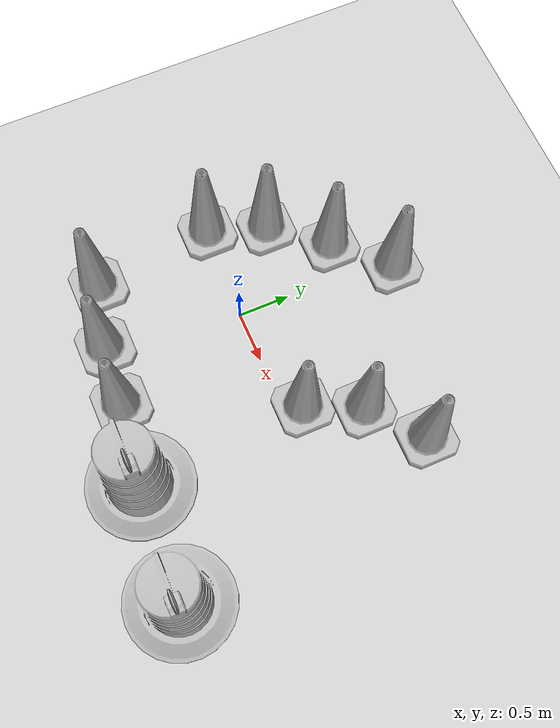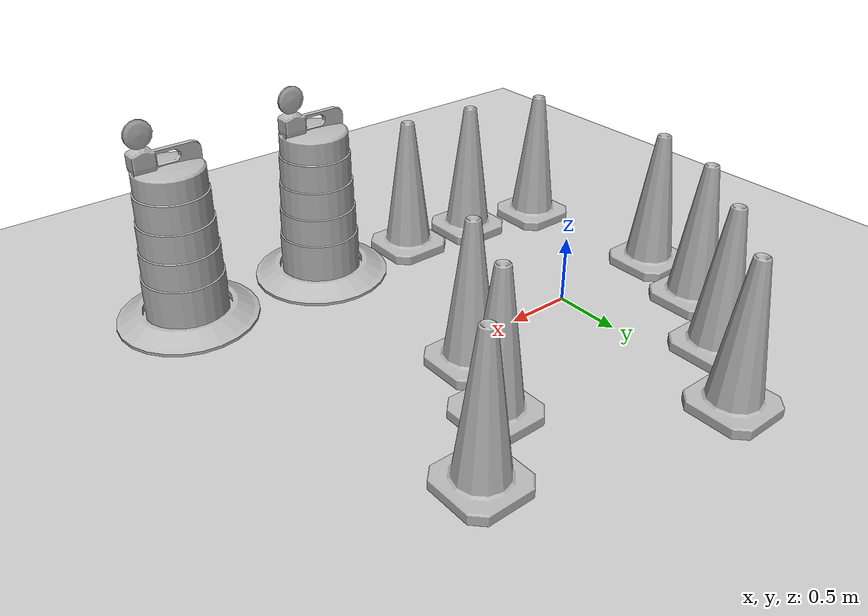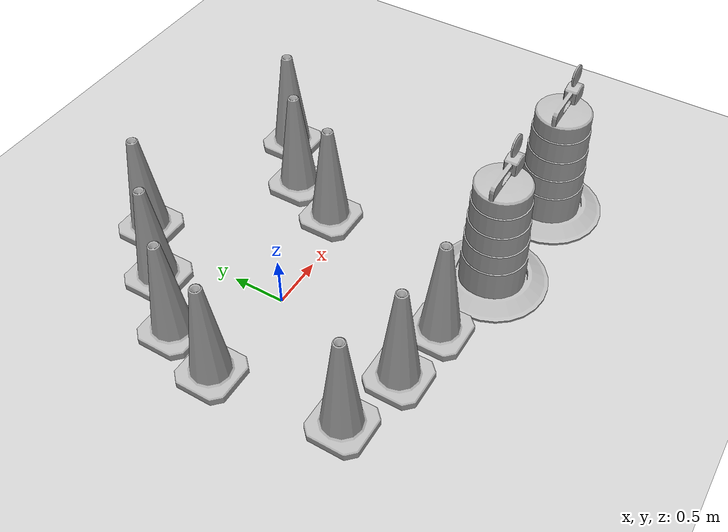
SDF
<sdf version="1.7">
 <world name="default">
  <light name="sun" type="directional">
   <pose>0 0 10 0 -0 0</pose>
   <diffuse>0.8 0.8 0.8 1</diffuse>
   <specular>0.2 0.2 0.2 1</specular>
   <attenuation>
    <range>1000</range>
    <constant>0.9</constant>
    <linear>0.01</linear>
    <quadratic>0.001</quadratic>
   </attenuation>
   <direction>-0.5 0.1 -0.9</direction>
   <spot><inner_angle>0</inner_angle><outer_angle>0</outer_angle><falloff>0</falloff></spot>
  </light>
  <model name="ground_plane">
   <static>1</static>
   <link name="link">
    <collision name="collision">
     <geometry><plane><normal>0 0 1</normal><size>100 100</size></plane></geometry>
     <surface>
      <contact><collide_bitmask>65535</collide_bitmask></contact>
      <friction><ode><mu>100</mu><mu2>50</mu2></ode></friction>
     </surface>
    </collision>
    <visual name="visual">
     <cast_shadows>0</cast_shadows>
     <geometry><plane><normal>0 0 1</normal><size>100 100</size></plane></geometry>
     <material>
      <script><uri>file://media/materials/scripts/gazebo.material</uri><name>Gazebo/Grey</name></script>
     </material>
    </visual>
   </link>
  </model>
  <gravity>0 0 -9.8</gravity>
  <magnetic_field>6e-06 2.3e-05 -4.2e-05</magnetic_field>
  <atmosphere type="adiabatic"/>
  <physics type="ode">
   <max_step_size>0.001</max_step_size>
   <real_time_factor>1</real_time_factor>
   <real_time_update_rate>1000</real_time_update_rate>
  </physics>
  <scene><ambient>0.4 0.4 0.4 1</ambient><background>0.7 0.7 0.7 1</background><shadows>1</shadows></scene>
  <audio><device>default</device></audio>
  <spherical_coordinates>
   <surface_model>EARTH_WGS84</surface_model>
   <latitude_deg>0</latitude_deg>
   <longitude_deg>0</longitude_deg>
   <elevation>0</elevation>
   <heading_deg>0</heading_deg>
  </spherical_coordinates>
  <model name="Construction Cone">
   <link name="link">
    <collision name="collision">
     <geometry>
      <mesh><scale>10 10 10</scale><uri>model://construction_cone/meshes/construction_cone.dae</uri></mesh>
     </geometry>
    </collision>
    <visual name="visual">
     <geometry>
      <mesh><scale>10 10 10</scale><uri>model://construction_cone/meshes/construction_cone.dae</uri></mesh>
     </geometry>
    </visual>
    <inertial>
     <inertia><ixx>1</ixx><ixy>0</ixy><ixz>0</ixz><iyy>1</iyy><iyz>0</iyz><izz>1</izz></inertia>
     <mass>1</mass>
    </inertial>
   </link>
   <pose>-0.932135 0.045776 -0 0 -0 0</pose>
  </model>
  <model name="Construction Cone_0">
   <link name="link">
    <collision name="collision">
     <geometry>
      <mesh><scale>10 10 10</scale><uri>model://construction_cone/meshes/construction_cone.dae</uri></mesh>
     </geometry>
    </collision>
    <visual name="visual">
     <geometry>
      <mesh><scale>10 10 10</scale><uri>model://construction_cone/meshes/construction_cone.dae</uri></mesh>
     </geometry>
    </visual>
    <inertial>
     <inertia><ixx>1</ixx><ixy>0</ixy><ixz>0</ixz><iyy>1</iyy><iyz>0</iyz><izz>1</izz></inertia>
     <mass>1</mass>
    </inertial>
   </link>
   <pose>-0.752402 0.594744 -0 0 -0 0</pose>
  </model>
  <model name="Construction Cone_1">
   <link name="link">
    <collision name="collision">
     <geometry>
      <mesh><scale>10 10 10</scale><uri>model://construction_cone/meshes/construction_cone.dae</uri></mesh>
     </geometry>
    </collision>
    <visual name="visual">
     <geometry>
      <mesh><scale>10 10 10</scale><uri>model://construction_cone/meshes/construction_cone.dae</uri></mesh>
     </geometry>
    </visual>
    <inertial>
     <inertia><ixx>1</ixx><ixy>0</ixy><ixz>0</ixz><iyy>1</iyy><iyz>0</iyz><izz>1</izz></inertia>
     <mass>1</mass>
    </inertial>
   </link>
   <pose>-0.343463 1.09178 -0 0 -0 0</pose>
  </model>
  <model name="Construction Cone_2">
   <link name="link">
    <collision name="collision">
     <geometry>
      <mesh><scale>10 10 10</scale><uri>model://construction_cone/meshes/construction_cone.dae</uri></mesh>
     </geometry>
    </collision>
    <visual name="visual">
     <geometry>
      <mesh><scale>10 10 10</scale><uri>model://construction_cone/meshes/construction_cone.dae</uri></mesh>
     </geometry>
    </visual>
    <inertial>
     <inertia><ixx>1</ixx><ixy>0</ixy><ixz>0</ixz><iyy>1</iyy><iyz>0</iyz><izz>1</izz></inertia>
     <mass>1</mass>
    </inertial>
   </link>
   <pose>0.103076 1.55249 -0 0 -0 0</pose>
  </model>
  <model name="Construction Cone_3">
   <link name="link">
    <collision name="collision">
     <geometry>
      <mesh><scale>10 10 10</scale><uri>model://construction_cone/meshes/construction_cone.dae</uri></mesh>
     </geometry>
    </collision>
    <visual name="visual">
     <geometry>
      <mesh><scale>10 10 10</scale><uri>model://construction_cone/meshes/construction_cone.dae</uri></mesh>
     </geometry>
    </visual>
    <inertial>
     <inertia><ixx>1</ixx><ixy>0</ixy><ixz>0</ixz><iyy>1</iyy><iyz>0</iyz><izz>1</izz></inertia>
     <mass>1</mass>
    </inertial>
   </link>
   <pose>-0.801411 -1.13416 -0 0 -0 0</pose>
  </model>
  <model name="Construction Cone_4">
   <link name="link">
    <collision name="collision">
     <geometry>
      <mesh><scale>10 10 10</scale><uri>model://construction_cone/meshes/construction_cone.dae</uri></mesh>
     </geometry>
    </collision>
    <visual name="visual">
     <geometry>
      <mesh><scale>10 10 10</scale><uri>model://construction_cone/meshes/construction_cone.dae</uri></mesh>
     </geometry>
    </visual>
    <inertial>
     <inertia><ixx>1</ixx><ixy>0</ixy><ixz>0</ixz><iyy>1</iyy><iyz>0</iyz><izz>1</izz></inertia>
     <mass>1</mass>
    </inertial>
   </link>
   <pose>-0.185548 -1.29146 -8e-06 -5e-06 -0 -0</pose>
  </model>
  <model name="Construction Cone_5">
   <link name="link">
    <collision name="collision">
     <geometry>
      <mesh><scale>10 10 10</scale><uri>model://construction_cone/meshes/construction_cone.dae</uri></mesh>
     </geometry>
    </collision>
    <visual name="visual">
     <geometry>
      <mesh><scale>10 10 10</scale><uri>model://construction_cone/meshes/construction_cone.dae</uri></mesh>
     </geometry>
    </visual>
    <inertial>
     <inertia><ixx>1</ixx><ixy>0</ixy><ixz>0</ixz><iyy>1</iyy><iyz>0</iyz><izz>1</izz></inertia>
     <mass>1</mass>
    </inertial>
   </link>
   <pose>0.404358 -1.34943 -8e-06 -5e-06 -0 -0</pose>
  </model>
  <model name="Construction Cone_6">
   <link name="link">
    <collision name="collision">
     <geometry>
      <mesh><scale>10 10 10</scale><uri>model://construction_cone/meshes/construction_cone.dae</uri></mesh>
     </geometry>
    </collision>
    <visual name="visual">
     <geometry>
      <mesh><scale>10 10 10</scale><uri>model://construction_cone/meshes/construction_cone.dae</uri></mesh>
     </geometry>
    </visual>
    <inertial>
     <inertia><ixx>1</ixx><ixy>0</ixy><ixz>0</ixz><iyy>1</iyy><iyz>0</iyz><izz>1</izz></inertia>
     <mass>1</mass>
    </inertial>
   </link>
   <pose>1.07677 0.174352 -0 0 -0 0</pose>
  </model>
  <model name="Construction Cone_7">
   <link name="link">
    <collision name="collision">
     <geometry>
      <mesh><scale>10 10 10</scale><uri>model://construction_cone/meshes/construction_cone.dae</uri></mesh>
     </geometry>
    </collision>
    <visual name="visual">
     <geometry>
      <mesh><scale>10 10 10</scale><uri>model://construction_cone/meshes/construction_cone.dae</uri></mesh>
     </geometry>
    </visual>
    <inertial>
     <inertia><ixx>1</ixx><ixy>0</ixy><ixz>0</ixz><iyy>1</iyy><iyz>0</iyz><izz>1</izz></inertia>
     <mass>1</mass>
    </inertial>
   </link>
   <pose>1.30821 0.689719 -0 0 -1e-06 0</pose>
  </model>
  <model name="Construction Cone_8">
   <link name="link">
    <collision name="collision">
     <geometry>
      <mesh><scale>10 10 10</scale><uri>model://construction_cone/meshes/construction_cone.dae</uri></mesh>
     </geometry>
    </collision>
    <visual name="visual">
     <geometry>
      <mesh><scale>10 10 10</scale><uri>model://construction_cone/meshes/construction_cone.dae</uri></mesh>
     </geometry>
    </visual>
    <inertial>
     <inertia><ixx>1</ixx><ixy>0</ixy><ixz>0</ixz><iyy>1</iyy><iyz>0</iyz><izz>1</izz></inertia>
     <mass>1</mass>
    </inertial>
   </link>
   <pose>1.78625 1.08982 -1e-05 -1e-06 0 0</pose>
  </model>
  <model name="Construction Barrel">
   <link name="link">
    <inertial>
     <pose>0 0 0.4 0 -0 0</pose>
     <mass>500</mass>
     <inertia><ixx>51.2096</ixx><iyy>51.2096</iyy><izz>25</izz><ixy>0</ixy><ixz>0</ixz><iyz>0</iyz></inertia>
    </inertial>
    <collision name="collision">
     <geometry><mesh><uri>model://construction_barrel/meshes/construction_barrel.dae</uri></mesh></geometry>
    </collision>
    <visual name="visual">
     <geometry><mesh><uri>model://construction_barrel/meshes/construction_barrel.dae</uri></mesh></geometry>
    </visual>
   </link>
   <pose>1.18177 -1.45967 0 0 0 -3e-06</pose>
  </model>
  <model name="Construction Barrel_0">
   <link name="link">
    <inertial>
     <pose>0 0 0.4 0 -0 0</pose>
     <mass>500</mass>
     <inertia><ixx>51.2096</ixx><iyy>51.2096</iyy><izz>25</izz><ixy>0</ixy><ixz>0</ixz><iyz>0</iyz></inertia>
    </inertial>
    <collision name="collision">
     <geometry><mesh><uri>model://construction_barrel/meshes/construction_barrel.dae</uri></mesh></geometry>
    </collision>
    <visual name="visual">
     <geometry><mesh><uri>model://construction_barrel/meshes/construction_barrel.dae</uri></mesh></geometry>
    </visual>
   </link>
   <pose>2.28541 -1.51797 -1e-06 3e-06 -2e-06 -2e-06</pose>
  </model>
 </world>
</sdf>
